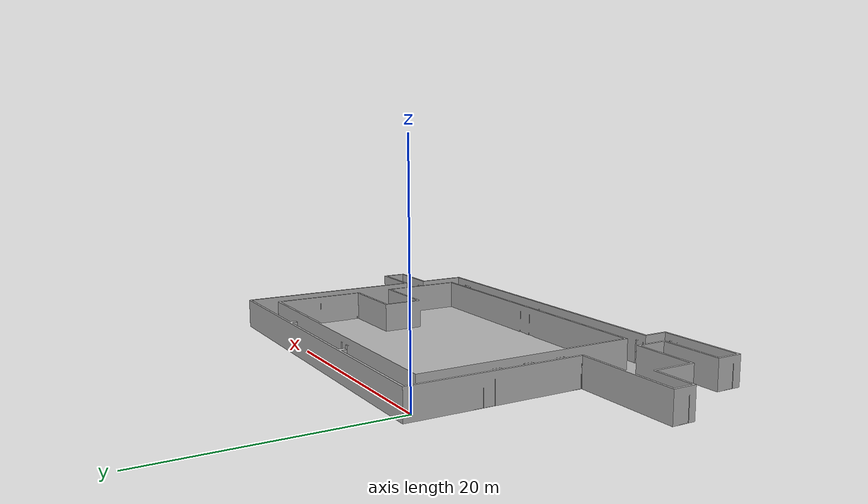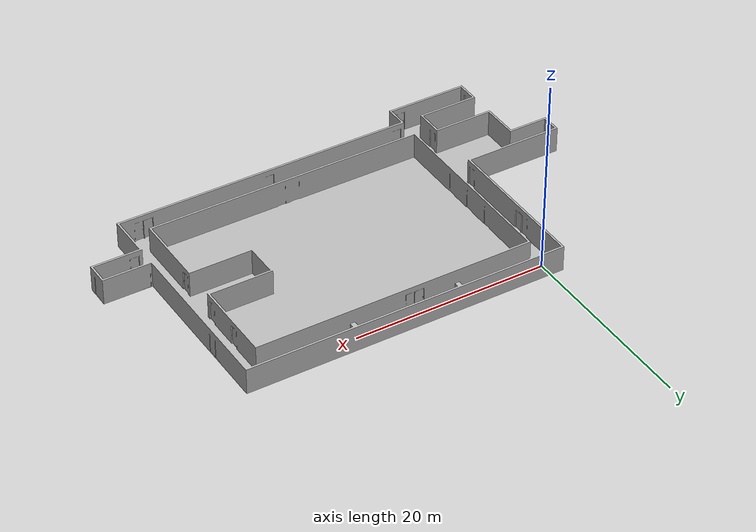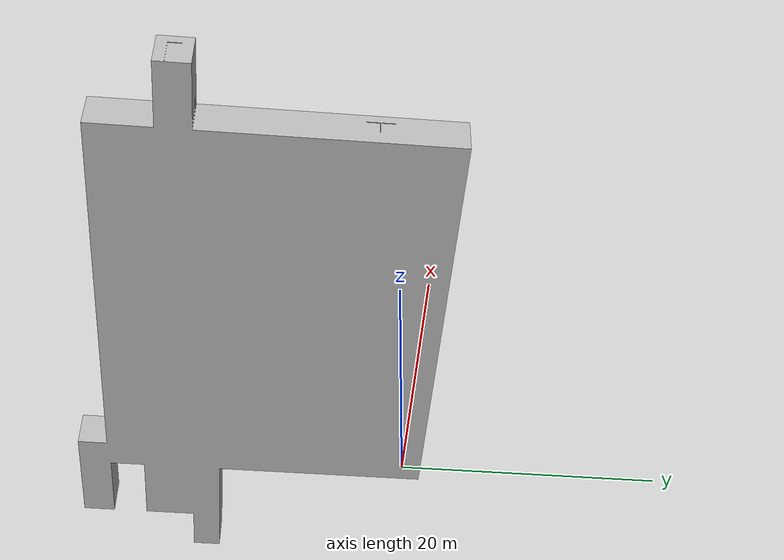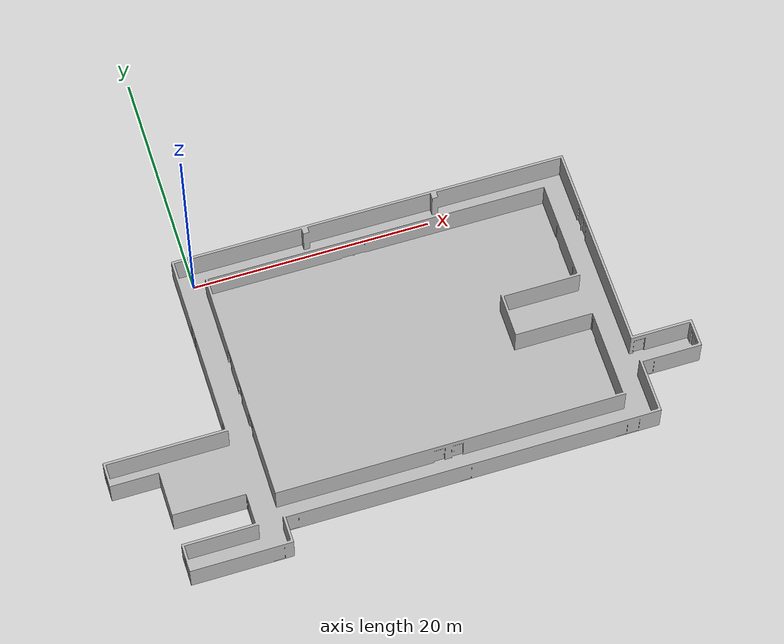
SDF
<?xml version="1.0" ?>
<sdf version="1.5">
  <model name="mtc5_basement_stl">
    <static>true</static>
    <pose>-1.2 1.2 0 0 0 -1.5707</pose>
    <link name="walls">
      <collision name="collision">
        <geometry>
          <mesh>
            <uri>model://mtc5_basement_stl/meshes/mtc5_basement.stl</uri>
          </mesh>
        </geometry>
      </collision>
      <visual name="visual">
        <geometry>
          <mesh>
            <uri>model://mtc5_basement_stl/meshes/mtc5_basement.stl</uri>
          </mesh>
        </geometry>
        <cast_shadows>false</cast_shadows>
      </visual>
    </link>
  </model>
</sdf>
